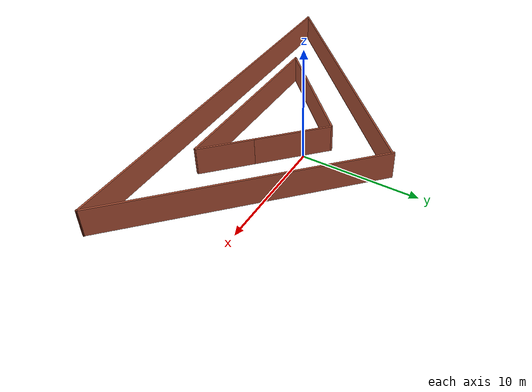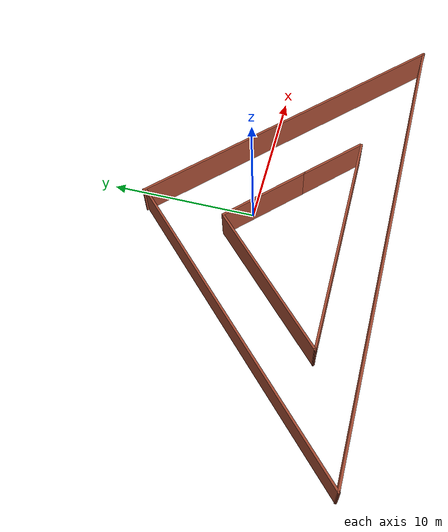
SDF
<?xml version='1.0'?>
<sdf version='1.7'>
  <model name='triangle_hallway_filled'>
    <pose>-1.13408 -1.01052 0 0 -0 0</pose>
    <link name='Wall_32'>
      <collision name='Wall_32_Collision'>
        <geometry>
          <box>
            <size>11.25 0.15 2.5</size>
          </box>
        </geometry>
        <pose>0 0 1.25 0 -0 0</pose>
      </collision>
      <visual name='Wall_32_Visual'>
        <pose>0 0 1.25 0 -0 0</pose>
        <geometry>
          <box>
            <size>11.25 0.15 2.5</size>
          </box>
        </geometry>
        <material>
          <script>
            <uri>file://media/materials/scripts/gazebo.material</uri>
            <name>Gazebo/Bricks</name>
          </script>
          <ambient>1 1 1 1</ambient>
        </material>
        <meta>
          <layer>0</layer>
        </meta>
      </visual>
      <pose>-4.62909 -1.34357 0 0 -0 -2.35619</pose>
    </link>
    <link name='Wall_36'>
      <collision name='Wall_36_Collision'>
        <geometry>
          <box>
            <size>6.5 0.15 2.5</size>
          </box>
        </geometry>
        <pose>0 0 1.25 0 -0 0</pose>
      </collision>
      <visual name='Wall_36_Visual'>
        <pose>0 0 1.25 0 -0 0</pose>
        <geometry>
          <box>
            <size>6.5 0.15 2.5</size>
          </box>
        </geometry>
        <material>
          <script>
            <uri>file://media/materials/scripts/gazebo.material</uri>
            <name>Gazebo/Bricks</name>
          </script>
          <ambient>1 1 1 1</ambient>
        </material>
        <meta>
          <layer>0</layer>
        </meta>
      </visual>
      <pose>1.54041 0.335812 0 0 -0 -0.785398</pose>
    </link>
    <link name='Wall_37'>
      <collision name='Wall_37_Collision'>
        <geometry>
          <box>
            <size>4.75 0.15 2.5</size>
          </box>
        </geometry>
        <pose>0 0 1.25 0 -0 0</pose>
      </collision>
      <visual name='Wall_37_Visual'>
        <pose>0 0 1.25 0 -0 0</pose>
        <geometry>
          <box>
            <size>4.75 0.15 2.5</size>
          </box>
        </geometry>
        <material>
          <script>
            <uri>file://media/materials/scripts/gazebo.material</uri>
            <name>Gazebo/Bricks</name>
          </script>
          <ambient>1 1 1 1</ambient>
        </material>
        <meta>
          <layer>0</layer>
        </meta>
      </visual>
      <pose>5.41182 -3.5356 0 0 -0 -0.785398</pose>
    </link>
    <link name='Wall_39'>
      <collision name='Wall_39_Collision'>
        <geometry>
          <box>
            <size>15.75 0.15 2.5</size>
          </box>
        </geometry>
        <pose>0 0 1.25 0 -0 0</pose>
      </collision>
      <visual name='Wall_39_Visual'>
        <pose>0 0 1.25 0 -0 0</pose>
        <geometry>
          <box>
            <size>15.75 0.15 2.5</size>
          </box>
        </geometry>
        <material>
          <script>
            <uri>file://media/materials/scripts/gazebo.material</uri>
            <name>Gazebo/Bricks</name>
          </script>
          <ambient>1 1 1 1</ambient>
        </material>
        <meta>
          <layer>0</layer>
        </meta>
      </visual>
      <pose>-0.753535 -5.26801 0 0 -0 0</pose>
    </link>
    <link name='Wall_52'>
      <collision name='Wall_52_Collision'>
        <geometry>
          <box>
            <size>33 0.15 2.5</size>
          </box>
        </geometry>
        <pose>0 0 1.25 0 -0 0</pose>
      </collision>
      <visual name='Wall_52_Visual'>
        <pose>0 0 1.25 0 -0 0</pose>
        <geometry>
          <box>
            <size>33 0.15 2.5</size>
          </box>
        </geometry>
        <material>
          <script>
            <uri>file://media/materials/scripts/gazebo.material</uri>
            <name>Gazebo/Bricks</name>
          </script>
          <ambient>1 1 1 1</ambient>
        </material>
        <meta>
          <layer>0</layer>
        </meta>
      </visual>
      <pose>-2e-06 -8.25547 0 0 -0 0</pose>
    </link>
    <link name='Wall_53'>
      <collision name='Wall_53_Collision'>
        <geometry>
          <box>
            <size>23.5 0.15 2.5</size>
          </box>
        </geometry>
        <pose>0 0 1.25 0 -0 0</pose>
      </collision>
      <visual name='Wall_53_Visual'>
        <pose>0 0 1.25 0 -0 0</pose>
        <geometry>
          <box>
            <size>23.5 0.15 2.5</size>
          </box>
        </geometry>
        <material>
          <script>
            <uri>file://media/materials/scripts/gazebo.material</uri>
            <name>Gazebo/Bricks</name>
          </script>
          <ambient>1 1 1 1</ambient>
        </material>
        <meta>
          <layer>0</layer>
        </meta>
      </visual>
      <pose>8.16953 0 0 0 -0 2.35619</pose>
    </link>
    <link name='Wall_55'>
      <collision name='Wall_55_Collision'>
        <geometry>
          <box>
            <size>23.25 0.15 2.5</size>
          </box>
        </geometry>
        <pose>0 0 1.25 0 -0 0</pose>
      </collision>
      <visual name='Wall_55_Visual'>
        <pose>0 0 1.25 0 -0 0</pose>
        <geometry>
          <box>
            <size>23.25 0.15 2.5</size>
          </box>
        </geometry>
        <material>
          <script>
            <uri>file://media/materials/scripts/gazebo.material</uri>
            <name>Gazebo/Bricks</name>
          </script>
          <ambient>1 1 1 1</ambient>
        </material>
        <meta>
          <layer>0</layer>
        </meta>
      </visual>
      <pose>-8.25792 -0.088388 0 0 -0 0.785398</pose>
    </link>
    <static>1</static>
  </model>
</sdf>
